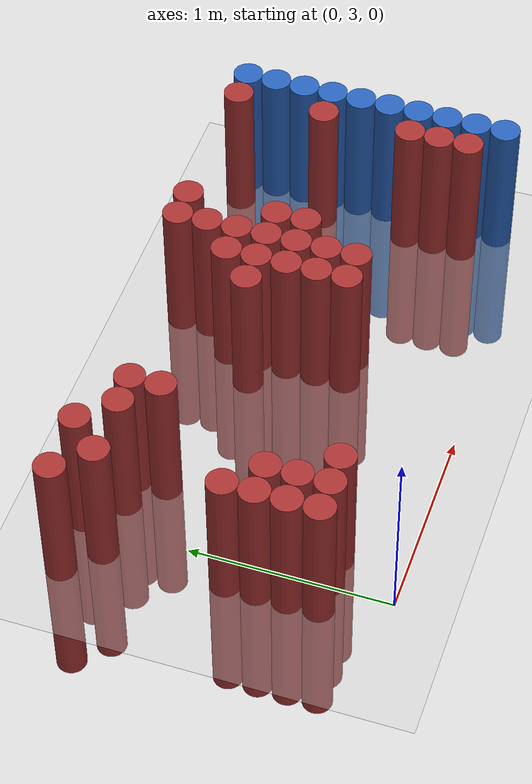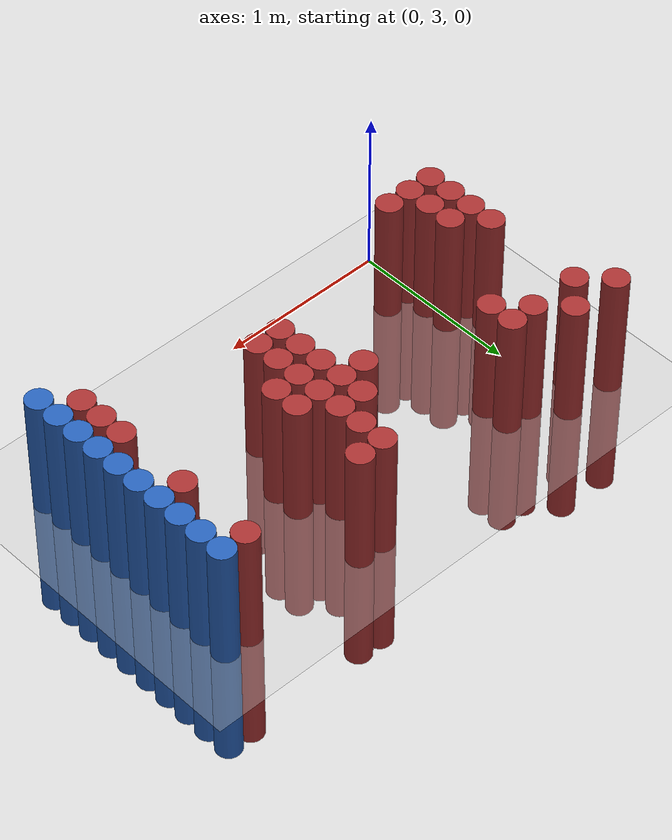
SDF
<sdf version="1.6">
 <world name="default">
  <model name="ground_plane">
   <static>1</static>
   <link name="link">
    <collision name="collision">
     <geometry><plane><normal>0 0 1</normal><size>100 100</size></plane></geometry>
     <surface><friction><ode><mu>100</mu><mu2>50</mu2></ode></friction></surface>
    </collision>
    <visual name="visual">
     <cast_shadows>0</cast_shadows>
     <geometry><plane><normal>0 0 1</normal><size>100 100</size></plane></geometry>
     <material>
      <script><uri>file://media/materials/scripts/gazebo.material</uri><name>Gazebo/Grey</name></script>
     </material>
    </visual>
   </link>
  </model>
  <model name="unit_cylinder_159">
   <static>1</static>
   <pose>-0.275000 4.525000 0.000000 0.000000 0.000000 0.000000</pose>
   <link name="link">
    <inertial>
     <mass>1</mass>
     <inertia><ixx>0.145833</ixx><ixy>0</ixy><ixz>0</ixz><iyy>0.145833</iyy><iyz>0</iyz><izz>0.125</izz></inertia>
    </inertial>
    <collision name="collision">
     <geometry><cylinder><radius>0.075000</radius><length>1.5</length></cylinder></geometry>
    </collision>
    <visual name="visual">
     <geometry><cylinder><radius>0.075000</radius><length>1.5</length></cylinder></geometry>
     <material>
      <ambient>0.648000 0.192000 0.192000 1</ambient>
      <diffuse>0.648000 0.192000 0.192000 1</diffuse>
     </material>
     <material>
      <script><name>Gazebo/Grey</name><uri>file://media/materials/scripts/gazebo.material</uri></script>
     </material>
    </visual>
   </link>
  </model>
  <model name="unit_cylinder_161">
   <static>1</static>
   <pose>-0.125000 3.325000 0.000000 0.000000 0.000000 0.000000</pose>
   <link name="link">
    <inertial>
     <mass>1</mass>
     <inertia><ixx>0.145833</ixx><ixy>0</ixy><ixz>0</ixz><iyy>0.145833</iyy><iyz>0</iyz><izz>0.125</izz></inertia>
    </inertial>
    <collision name="collision">
     <geometry><cylinder><radius>0.075000</radius><length>1.5</length></cylinder></geometry>
    </collision>
    <visual name="visual">
     <geometry><cylinder><radius>0.075000</radius><length>1.5</length></cylinder></geometry>
     <material>
      <ambient>0.648000 0.192000 0.192000 1</ambient>
      <diffuse>0.648000 0.192000 0.192000 1</diffuse>
     </material>
     <material>
      <script><name>Gazebo/Grey</name><uri>file://media/materials/scripts/gazebo.material</uri></script>
     </material>
    </visual>
   </link>
  </model>
  <model name="unit_cylinder_162">
   <static>1</static>
   <pose>-0.125000 3.475000 0.000000 0.000000 0.000000 0.000000</pose>
   <link name="link">
    <inertial>
     <mass>1</mass>
     <inertia><ixx>0.145833</ixx><ixy>0</ixy><ixz>0</ixz><iyy>0.145833</iyy><iyz>0</iyz><izz>0.125</izz></inertia>
    </inertial>
    <collision name="collision">
     <geometry><cylinder><radius>0.075000</radius><length>1.5</length></cylinder></geometry>
    </collision>
    <visual name="visual">
     <geometry><cylinder><radius>0.075000</radius><length>1.5</length></cylinder></geometry>
     <material>
      <ambient>0.648000 0.192000 0.192000 1</ambient>
      <diffuse>0.648000 0.192000 0.192000 1</diffuse>
     </material>
     <material>
      <script><name>Gazebo/Grey</name><uri>file://media/materials/scripts/gazebo.material</uri></script>
     </material>
    </visual>
   </link>
  </model>
  <model name="unit_cylinder_163">
   <static>1</static>
   <pose>-0.125000 3.625000 0.000000 0.000000 0.000000 0.000000</pose>
   <link name="link">
    <inertial>
     <mass>1</mass>
     <inertia><ixx>0.145833</ixx><ixy>0</ixy><ixz>0</ixz><iyy>0.145833</iyy><iyz>0</iyz><izz>0.125</izz></inertia>
    </inertial>
    <collision name="collision">
     <geometry><cylinder><radius>0.075000</radius><length>1.5</length></cylinder></geometry>
    </collision>
    <visual name="visual">
     <geometry><cylinder><radius>0.075000</radius><length>1.5</length></cylinder></geometry>
     <material>
      <ambient>0.648000 0.192000 0.192000 1</ambient>
      <diffuse>0.648000 0.192000 0.192000 1</diffuse>
     </material>
     <material>
      <script><name>Gazebo/Grey</name><uri>file://media/materials/scripts/gazebo.material</uri></script>
     </material>
    </visual>
   </link>
  </model>
  <model name="unit_cylinder_164">
   <static>1</static>
   <pose>-0.125000 3.775000 0.000000 0.000000 0.000000 0.000000</pose>
   <link name="link">
    <inertial>
     <mass>1</mass>
     <inertia><ixx>0.145833</ixx><ixy>0</ixy><ixz>0</ixz><iyy>0.145833</iyy><iyz>0</iyz><izz>0.125</izz></inertia>
    </inertial>
    <collision name="collision">
     <geometry><cylinder><radius>0.075000</radius><length>1.5</length></cylinder></geometry>
    </collision>
    <visual name="visual">
     <geometry><cylinder><radius>0.075000</radius><length>1.5</length></cylinder></geometry>
     <material>
      <ambient>0.648000 0.192000 0.192000 1</ambient>
      <diffuse>0.648000 0.192000 0.192000 1</diffuse>
     </material>
     <material>
      <script><name>Gazebo/Grey</name><uri>file://media/materials/scripts/gazebo.material</uri></script>
     </material>
    </visual>
   </link>
  </model>
  <model name="unit_cylinder_165">
   <static>1</static>
   <pose>-0.125000 4.375000 0.000000 0.000000 0.000000 0.000000</pose>
   <link name="link">
    <inertial>
     <mass>1</mass>
     <inertia><ixx>0.145833</ixx><ixy>0</ixy><ixz>0</ixz><iyy>0.145833</iyy><iyz>0</iyz><izz>0.125</izz></inertia>
    </inertial>
    <collision name="collision">
     <geometry><cylinder><radius>0.075000</radius><length>1.5</length></cylinder></geometry>
    </collision>
    <visual name="visual">
     <geometry><cylinder><radius>0.075000</radius><length>1.5</length></cylinder></geometry>
     <material>
      <ambient>0.648000 0.192000 0.192000 1</ambient>
      <diffuse>0.648000 0.192000 0.192000 1</diffuse>
     </material>
     <material>
      <script><name>Gazebo/Grey</name><uri>file://media/materials/scripts/gazebo.material</uri></script>
     </material>
    </visual>
   </link>
  </model>
  <model name="unit_cylinder_167">
   <static>1</static>
   <pose>0.025000 3.325000 0.000000 0.000000 0.000000 0.000000</pose>
   <link name="link">
    <inertial>
     <mass>1</mass>
     <inertia><ixx>0.145833</ixx><ixy>0</ixy><ixz>0</ixz><iyy>0.145833</iyy><iyz>0</iyz><izz>0.125</izz></inertia>
    </inertial>
    <collision name="collision">
     <geometry><cylinder><radius>0.075000</radius><length>1.5</length></cylinder></geometry>
    </collision>
    <visual name="visual">
     <geometry><cylinder><radius>0.075000</radius><length>1.5</length></cylinder></geometry>
     <material>
      <ambient>0.648000 0.192000 0.192000 1</ambient>
      <diffuse>0.648000 0.192000 0.192000 1</diffuse>
     </material>
     <material>
      <script><name>Gazebo/Grey</name><uri>file://media/materials/scripts/gazebo.material</uri></script>
     </material>
    </visual>
   </link>
  </model>
  <model name="unit_cylinder_168">
   <static>1</static>
   <pose>0.025000 3.475000 0.000000 0.000000 0.000000 0.000000</pose>
   <link name="link">
    <inertial>
     <mass>1</mass>
     <inertia><ixx>0.145833</ixx><ixy>0</ixy><ixz>0</ixz><iyy>0.145833</iyy><iyz>0</iyz><izz>0.125</izz></inertia>
    </inertial>
    <collision name="collision">
     <geometry><cylinder><radius>0.075000</radius><length>1.5</length></cylinder></geometry>
    </collision>
    <visual name="visual">
     <geometry><cylinder><radius>0.075000</radius><length>1.5</length></cylinder></geometry>
     <material>
      <ambient>0.648000 0.192000 0.192000 1</ambient>
      <diffuse>0.648000 0.192000 0.192000 1</diffuse>
     </material>
     <material>
      <script><name>Gazebo/Grey</name><uri>file://media/materials/scripts/gazebo.material</uri></script>
     </material>
    </visual>
   </link>
  </model>
  <model name="unit_cylinder_169">
   <static>1</static>
   <pose>0.025000 3.625000 0.000000 0.000000 0.000000 0.000000</pose>
   <link name="link">
    <inertial>
     <mass>1</mass>
     <inertia><ixx>0.145833</ixx><ixy>0</ixy><ixz>0</ixz><iyy>0.145833</iyy><iyz>0</iyz><izz>0.125</izz></inertia>
    </inertial>
    <collision name="collision">
     <geometry><cylinder><radius>0.075000</radius><length>1.5</length></cylinder></geometry>
    </collision>
    <visual name="visual">
     <geometry><cylinder><radius>0.075000</radius><length>1.5</length></cylinder></geometry>
     <material>
      <ambient>0.648000 0.192000 0.192000 1</ambient>
      <diffuse>0.648000 0.192000 0.192000 1</diffuse>
     </material>
     <material>
      <script><name>Gazebo/Grey</name><uri>file://media/materials/scripts/gazebo.material</uri></script>
     </material>
    </visual>
   </link>
  </model>
  <model name="unit_cylinder_170">
   <static>1</static>
   <pose>0.025000 4.525000 0.000000 0.000000 0.000000 0.000000</pose>
   <link name="link">
    <inertial>
     <mass>1</mass>
     <inertia><ixx>0.145833</ixx><ixy>0</ixy><ixz>0</ixz><iyy>0.145833</iyy><iyz>0</iyz><izz>0.125</izz></inertia>
    </inertial>
    <collision name="collision">
     <geometry><cylinder><radius>0.075000</radius><length>1.5</length></cylinder></geometry>
    </collision>
    <visual name="visual">
     <geometry><cylinder><radius>0.075000</radius><length>1.5</length></cylinder></geometry>
     <material>
      <ambient>0.648000 0.192000 0.192000 1</ambient>
      <diffuse>0.648000 0.192000 0.192000 1</diffuse>
     </material>
     <material>
      <script><name>Gazebo/Grey</name><uri>file://media/materials/scripts/gazebo.material</uri></script>
     </material>
    </visual>
   </link>
  </model>
  <model name="unit_cylinder_172">
   <static>1</static>
   <pose>0.175000 3.325000 0.000000 0.000000 0.000000 0.000000</pose>
   <link name="link">
    <inertial>
     <mass>1</mass>
     <inertia><ixx>0.145833</ixx><ixy>0</ixy><ixz>0</ixz><iyy>0.145833</iyy><iyz>0</iyz><izz>0.125</izz></inertia>
    </inertial>
    <collision name="collision">
     <geometry><cylinder><radius>0.075000</radius><length>1.5</length></cylinder></geometry>
    </collision>
    <visual name="visual">
     <geometry><cylinder><radius>0.075000</radius><length>1.5</length></cylinder></geometry>
     <material>
      <ambient>0.648000 0.192000 0.192000 1</ambient>
      <diffuse>0.648000 0.192000 0.192000 1</diffuse>
     </material>
     <material>
      <script><name>Gazebo/Grey</name><uri>file://media/materials/scripts/gazebo.material</uri></script>
     </material>
    </visual>
   </link>
  </model>
  <model name="unit_cylinder_173">
   <static>1</static>
   <pose>0.175000 4.375000 0.000000 0.000000 0.000000 0.000000</pose>
   <link name="link">
    <inertial>
     <mass>1</mass>
     <inertia><ixx>0.145833</ixx><ixy>0</ixy><ixz>0</ixz><iyy>0.145833</iyy><iyz>0</iyz><izz>0.125</izz></inertia>
    </inertial>
    <collision name="collision">
     <geometry><cylinder><radius>0.075000</radius><length>1.5</length></cylinder></geometry>
    </collision>
    <visual name="visual">
     <geometry><cylinder><radius>0.075000</radius><length>1.5</length></cylinder></geometry>
     <material>
      <ambient>0.648000 0.192000 0.192000 1</ambient>
      <diffuse>0.648000 0.192000 0.192000 1</diffuse>
     </material>
     <material>
      <script><name>Gazebo/Grey</name><uri>file://media/materials/scripts/gazebo.material</uri></script>
     </material>
    </visual>
   </link>
  </model>
  <model name="unit_cylinder_177">
   <static>1</static>
   <pose>0.325000 4.225000 0.000000 0.000000 0.000000 0.000000</pose>
   <link name="link">
    <inertial>
     <mass>1</mass>
     <inertia><ixx>0.145833</ixx><ixy>0</ixy><ixz>0</ixz><iyy>0.145833</iyy><iyz>0</iyz><izz>0.125</izz></inertia>
    </inertial>
    <collision name="collision">
     <geometry><cylinder><radius>0.075000</radius><length>1.5</length></cylinder></geometry>
    </collision>
    <visual name="visual">
     <geometry><cylinder><radius>0.075000</radius><length>1.5</length></cylinder></geometry>
     <material>
      <ambient>0.648000 0.192000 0.192000 1</ambient>
      <diffuse>0.648000 0.192000 0.192000 1</diffuse>
     </material>
     <material>
      <script><name>Gazebo/Grey</name><uri>file://media/materials/scripts/gazebo.material</uri></script>
     </material>
    </visual>
   </link>
  </model>
  <model name="unit_cylinder_178">
   <static>1</static>
   <pose>0.325000 4.375000 0.000000 0.000000 0.000000 0.000000</pose>
   <link name="link">
    <inertial>
     <mass>1</mass>
     <inertia><ixx>0.145833</ixx><ixy>0</ixy><ixz>0</ixz><iyy>0.145833</iyy><iyz>0</iyz><izz>0.125</izz></inertia>
    </inertial>
    <collision name="collision">
     <geometry><cylinder><radius>0.075000</radius><length>1.5</length></cylinder></geometry>
    </collision>
    <visual name="visual">
     <geometry><cylinder><radius>0.075000</radius><length>1.5</length></cylinder></geometry>
     <material>
      <ambient>0.648000 0.192000 0.192000 1</ambient>
      <diffuse>0.648000 0.192000 0.192000 1</diffuse>
     </material>
     <material>
      <script><name>Gazebo/Grey</name><uri>file://media/materials/scripts/gazebo.material</uri></script>
     </material>
    </visual>
   </link>
  </model>
  <model name="unit_cylinder_192">
   <static>1</static>
   <pose>1.075000 4.075000 0.000000 0.000000 0.000000 0.000000</pose>
   <link name="link">
    <inertial>
     <mass>1</mass>
     <inertia><ixx>0.145833</ixx><ixy>0</ixy><ixz>0</ixz><iyy>0.145833</iyy><iyz>0</iyz><izz>0.125</izz></inertia>
    </inertial>
    <collision name="collision">
     <geometry><cylinder><radius>0.075000</radius><length>1.5</length></cylinder></geometry>
    </collision>
    <visual name="visual">
     <geometry><cylinder><radius>0.075000</radius><length>1.5</length></cylinder></geometry>
     <material>
      <ambient>0.648000 0.192000 0.192000 1</ambient>
      <diffuse>0.648000 0.192000 0.192000 1</diffuse>
     </material>
     <material>
      <script><name>Gazebo/Grey</name><uri>file://media/materials/scripts/gazebo.material</uri></script>
     </material>
    </visual>
   </link>
  </model>
  <model name="unit_cylinder_193">
   <static>1</static>
   <pose>1.225000 3.625000 0.000000 0.000000 0.000000 0.000000</pose>
   <link name="link">
    <inertial>
     <mass>1</mass>
     <inertia><ixx>0.145833</ixx><ixy>0</ixy><ixz>0</ixz><iyy>0.145833</iyy><iyz>0</iyz><izz>0.125</izz></inertia>
    </inertial>
    <collision name="collision">
     <geometry><cylinder><radius>0.075000</radius><length>1.5</length></cylinder></geometry>
    </collision>
    <visual name="visual">
     <geometry><cylinder><radius>0.075000</radius><length>1.5</length></cylinder></geometry>
     <material>
      <ambient>0.648000 0.192000 0.192000 1</ambient>
      <diffuse>0.648000 0.192000 0.192000 1</diffuse>
     </material>
     <material>
      <script><name>Gazebo/Grey</name><uri>file://media/materials/scripts/gazebo.material</uri></script>
     </material>
    </visual>
   </link>
  </model>
  <model name="unit_cylinder_194">
   <static>1</static>
   <pose>1.225000 3.775000 0.000000 0.000000 0.000000 0.000000</pose>
   <link name="link">
    <inertial>
     <mass>1</mass>
     <inertia><ixx>0.145833</ixx><ixy>0</ixy><ixz>0</ixz><iyy>0.145833</iyy><iyz>0</iyz><izz>0.125</izz></inertia>
    </inertial>
    <collision name="collision">
     <geometry><cylinder><radius>0.075000</radius><length>1.5</length></cylinder></geometry>
    </collision>
    <visual name="visual">
     <geometry><cylinder><radius>0.075000</radius><length>1.5</length></cylinder></geometry>
     <material>
      <ambient>0.648000 0.192000 0.192000 1</ambient>
      <diffuse>0.648000 0.192000 0.192000 1</diffuse>
     </material>
     <material>
      <script><name>Gazebo/Grey</name><uri>file://media/materials/scripts/gazebo.material</uri></script>
     </material>
    </visual>
   </link>
  </model>
  <model name="unit_cylinder_195">
   <static>1</static>
   <pose>1.225000 3.925000 0.000000 0.000000 0.000000 0.000000</pose>
   <link name="link">
    <inertial>
     <mass>1</mass>
     <inertia><ixx>0.145833</ixx><ixy>0</ixy><ixz>0</ixz><iyy>0.145833</iyy><iyz>0</iyz><izz>0.125</izz></inertia>
    </inertial>
    <collision name="collision">
     <geometry><cylinder><radius>0.075000</radius><length>1.5</length></cylinder></geometry>
    </collision>
    <visual name="visual">
     <geometry><cylinder><radius>0.075000</radius><length>1.5</length></cylinder></geometry>
     <material>
      <ambient>0.648000 0.192000 0.192000 1</ambient>
      <diffuse>0.648000 0.192000 0.192000 1</diffuse>
     </material>
     <material>
      <script><name>Gazebo/Grey</name><uri>file://media/materials/scripts/gazebo.material</uri></script>
     </material>
    </visual>
   </link>
  </model>
  <model name="unit_cylinder_196">
   <static>1</static>
   <pose>1.225000 4.075000 0.000000 0.000000 0.000000 0.000000</pose>
   <link name="link">
    <inertial>
     <mass>1</mass>
     <inertia><ixx>0.145833</ixx><ixy>0</ixy><ixz>0</ixz><iyy>0.145833</iyy><iyz>0</iyz><izz>0.125</izz></inertia>
    </inertial>
    <collision name="collision">
     <geometry><cylinder><radius>0.075000</radius><length>1.5</length></cylinder></geometry>
    </collision>
    <visual name="visual">
     <geometry><cylinder><radius>0.075000</radius><length>1.5</length></cylinder></geometry>
     <material>
      <ambient>0.648000 0.192000 0.192000 1</ambient>
      <diffuse>0.648000 0.192000 0.192000 1</diffuse>
     </material>
     <material>
      <script><name>Gazebo/Grey</name><uri>file://media/materials/scripts/gazebo.material</uri></script>
     </material>
    </visual>
   </link>
  </model>
  <model name="unit_cylinder_197">
   <static>1</static>
   <pose>1.225000 4.225000 0.000000 0.000000 0.000000 0.000000</pose>
   <link name="link">
    <inertial>
     <mass>1</mass>
     <inertia><ixx>0.145833</ixx><ixy>0</ixy><ixz>0</ixz><iyy>0.145833</iyy><iyz>0</iyz><izz>0.125</izz></inertia>
    </inertial>
    <collision name="collision">
     <geometry><cylinder><radius>0.075000</radius><length>1.5</length></cylinder></geometry>
    </collision>
    <visual name="visual">
     <geometry><cylinder><radius>0.075000</radius><length>1.5</length></cylinder></geometry>
     <material>
      <ambient>0.648000 0.192000 0.192000 1</ambient>
      <diffuse>0.648000 0.192000 0.192000 1</diffuse>
     </material>
     <material>
      <script><name>Gazebo/Grey</name><uri>file://media/materials/scripts/gazebo.material</uri></script>
     </material>
    </visual>
   </link>
  </model>
  <model name="unit_cylinder_198">
   <static>1</static>
   <pose>1.375000 3.625000 0.000000 0.000000 0.000000 0.000000</pose>
   <link name="link">
    <inertial>
     <mass>1</mass>
     <inertia><ixx>0.145833</ixx><ixy>0</ixy><ixz>0</ixz><iyy>0.145833</iyy><iyz>0</iyz><izz>0.125</izz></inertia>
    </inertial>
    <collision name="collision">
     <geometry><cylinder><radius>0.075000</radius><length>1.5</length></cylinder></geometry>
    </collision>
    <visual name="visual">
     <geometry><cylinder><radius>0.075000</radius><length>1.5</length></cylinder></geometry>
     <material>
      <ambient>0.648000 0.192000 0.192000 1</ambient>
      <diffuse>0.648000 0.192000 0.192000 1</diffuse>
     </material>
     <material>
      <script><name>Gazebo/Grey</name><uri>file://media/materials/scripts/gazebo.material</uri></script>
     </material>
    </visual>
   </link>
  </model>
  <model name="unit_cylinder_199">
   <static>1</static>
   <pose>1.375000 3.775000 0.000000 0.000000 0.000000 0.000000</pose>
   <link name="link">
    <inertial>
     <mass>1</mass>
     <inertia><ixx>0.145833</ixx><ixy>0</ixy><ixz>0</ixz><iyy>0.145833</iyy><iyz>0</iyz><izz>0.125</izz></inertia>
    </inertial>
    <collision name="collision">
     <geometry><cylinder><radius>0.075000</radius><length>1.5</length></cylinder></geometry>
    </collision>
    <visual name="visual">
     <geometry><cylinder><radius>0.075000</radius><length>1.5</length></cylinder></geometry>
     <material>
      <ambient>0.648000 0.192000 0.192000 1</ambient>
      <diffuse>0.648000 0.192000 0.192000 1</diffuse>
     </material>
     <material>
      <script><name>Gazebo/Grey</name><uri>file://media/materials/scripts/gazebo.material</uri></script>
     </material>
    </visual>
   </link>
  </model>
  <model name="unit_cylinder_200">
   <static>1</static>
   <pose>1.375000 3.925000 0.000000 0.000000 0.000000 0.000000</pose>
   <link name="link">
    <inertial>
     <mass>1</mass>
     <inertia><ixx>0.145833</ixx><ixy>0</ixy><ixz>0</ixz><iyy>0.145833</iyy><iyz>0</iyz><izz>0.125</izz></inertia>
    </inertial>
    <collision name="collision">
     <geometry><cylinder><radius>0.075000</radius><length>1.5</length></cylinder></geometry>
    </collision>
    <visual name="visual">
     <geometry><cylinder><radius>0.075000</radius><length>1.5</length></cylinder></geometry>
     <material>
      <ambient>0.648000 0.192000 0.192000 1</ambient>
      <diffuse>0.648000 0.192000 0.192000 1</diffuse>
     </material>
     <material>
      <script><name>Gazebo/Grey</name><uri>file://media/materials/scripts/gazebo.material</uri></script>
     </material>
    </visual>
   </link>
  </model>
  <model name="unit_cylinder_201">
   <static>1</static>
   <pose>1.375000 4.075000 0.000000 0.000000 0.000000 0.000000</pose>
   <link name="link">
    <inertial>
     <mass>1</mass>
     <inertia><ixx>0.145833</ixx><ixy>0</ixy><ixz>0</ixz><iyy>0.145833</iyy><iyz>0</iyz><izz>0.125</izz></inertia>
    </inertial>
    <collision name="collision">
     <geometry><cylinder><radius>0.075000</radius><length>1.5</length></cylinder></geometry>
    </collision>
    <visual name="visual">
     <geometry><cylinder><radius>0.075000</radius><length>1.5</length></cylinder></geometry>
     <material>
      <ambient>0.648000 0.192000 0.192000 1</ambient>
      <diffuse>0.648000 0.192000 0.192000 1</diffuse>
     </material>
     <material>
      <script><name>Gazebo/Grey</name><uri>file://media/materials/scripts/gazebo.material</uri></script>
     </material>
    </visual>
   </link>
  </model>
  <model name="unit_cylinder_202">
   <static>1</static>
   <pose>1.375000 4.225000 0.000000 0.000000 0.000000 0.000000</pose>
   <link name="link">
    <inertial>
     <mass>1</mass>
     <inertia><ixx>0.145833</ixx><ixy>0</ixy><ixz>0</ixz><iyy>0.145833</iyy><iyz>0</iyz><izz>0.125</izz></inertia>
    </inertial>
    <collision name="collision">
     <geometry><cylinder><radius>0.075000</radius><length>1.5</length></cylinder></geometry>
    </collision>
    <visual name="visual">
     <geometry><cylinder><radius>0.075000</radius><length>1.5</length></cylinder></geometry>
     <material>
      <ambient>0.648000 0.192000 0.192000 1</ambient>
      <diffuse>0.648000 0.192000 0.192000 1</diffuse>
     </material>
     <material>
      <script><name>Gazebo/Grey</name><uri>file://media/materials/scripts/gazebo.material</uri></script>
     </material>
    </visual>
   </link>
  </model>
  <model name="unit_cylinder_203">
   <static>1</static>
   <pose>1.375000 4.375000 0.000000 0.000000 0.000000 0.000000</pose>
   <link name="link">
    <inertial>
     <mass>1</mass>
     <inertia><ixx>0.145833</ixx><ixy>0</ixy><ixz>0</ixz><iyy>0.145833</iyy><iyz>0</iyz><izz>0.125</izz></inertia>
    </inertial>
    <collision name="collision">
     <geometry><cylinder><radius>0.075000</radius><length>1.5</length></cylinder></geometry>
    </collision>
    <visual name="visual">
     <geometry><cylinder><radius>0.075000</radius><length>1.5</length></cylinder></geometry>
     <material>
      <ambient>0.648000 0.192000 0.192000 1</ambient>
      <diffuse>0.648000 0.192000 0.192000 1</diffuse>
     </material>
     <material>
      <script><name>Gazebo/Grey</name><uri>file://media/materials/scripts/gazebo.material</uri></script>
     </material>
    </visual>
   </link>
  </model>
  <model name="unit_cylinder_204">
   <static>1</static>
   <pose>1.375000 4.525000 0.000000 0.000000 0.000000 0.000000</pose>
   <link name="link">
    <inertial>
     <mass>1</mass>
     <inertia><ixx>0.145833</ixx><ixy>0</ixy><ixz>0</ixz><iyy>0.145833</iyy><iyz>0</iyz><izz>0.125</izz></inertia>
    </inertial>
    <collision name="collision">
     <geometry><cylinder><radius>0.075000</radius><length>1.5</length></cylinder></geometry>
    </collision>
    <visual name="visual">
     <geometry><cylinder><radius>0.075000</radius><length>1.5</length></cylinder></geometry>
     <material>
      <ambient>0.648000 0.192000 0.192000 1</ambient>
      <diffuse>0.648000 0.192000 0.192000 1</diffuse>
     </material>
     <material>
      <script><name>Gazebo/Grey</name><uri>file://media/materials/scripts/gazebo.material</uri></script>
     </material>
    </visual>
   </link>
  </model>
  <model name="unit_cylinder_207">
   <static>1</static>
   <pose>1.525000 3.925000 0.000000 0.000000 0.000000 0.000000</pose>
   <link name="link">
    <inertial>
     <mass>1</mass>
     <inertia><ixx>0.145833</ixx><ixy>0</ixy><ixz>0</ixz><iyy>0.145833</iyy><iyz>0</iyz><izz>0.125</izz></inertia>
    </inertial>
    <collision name="collision">
     <geometry><cylinder><radius>0.075000</radius><length>1.5</length></cylinder></geometry>
    </collision>
    <visual name="visual">
     <geometry><cylinder><radius>0.075000</radius><length>1.5</length></cylinder></geometry>
     <material>
      <ambient>0.648000 0.192000 0.192000 1</ambient>
      <diffuse>0.648000 0.192000 0.192000 1</diffuse>
     </material>
     <material>
      <script><name>Gazebo/Grey</name><uri>file://media/materials/scripts/gazebo.material</uri></script>
     </material>
    </visual>
   </link>
  </model>
  <model name="unit_cylinder_208">
   <static>1</static>
   <pose>1.525000 4.075000 0.000000 0.000000 0.000000 0.000000</pose>
   <link name="link">
    <inertial>
     <mass>1</mass>
     <inertia><ixx>0.145833</ixx><ixy>0</ixy><ixz>0</ixz><iyy>0.145833</iyy><iyz>0</iyz><izz>0.125</izz></inertia>
    </inertial>
    <collision name="collision">
     <geometry><cylinder><radius>0.075000</radius><length>1.5</length></cylinder></geometry>
    </collision>
    <visual name="visual">
     <geometry><cylinder><radius>0.075000</radius><length>1.5</length></cylinder></geometry>
     <material>
      <ambient>0.648000 0.192000 0.192000 1</ambient>
      <diffuse>0.648000 0.192000 0.192000 1</diffuse>
     </material>
     <material>
      <script><name>Gazebo/Grey</name><uri>file://media/materials/scripts/gazebo.material</uri></script>
     </material>
    </visual>
   </link>
  </model>
  <model name="unit_cylinder_209">
   <static>1</static>
   <pose>1.525000 4.525000 0.000000 0.000000 0.000000 0.000000</pose>
   <link name="link">
    <inertial>
     <mass>1</mass>
     <inertia><ixx>0.145833</ixx><ixy>0</ixy><ixz>0</ixz><iyy>0.145833</iyy><iyz>0</iyz><izz>0.125</izz></inertia>
    </inertial>
    <collision name="collision">
     <geometry><cylinder><radius>0.075000</radius><length>1.5</length></cylinder></geometry>
    </collision>
    <visual name="visual">
     <geometry><cylinder><radius>0.075000</radius><length>1.5</length></cylinder></geometry>
     <material>
      <ambient>0.648000 0.192000 0.192000 1</ambient>
      <diffuse>0.648000 0.192000 0.192000 1</diffuse>
     </material>
     <material>
      <script><name>Gazebo/Grey</name><uri>file://media/materials/scripts/gazebo.material</uri></script>
     </material>
    </visual>
   </link>
  </model>
  <model name="unit_cylinder_239">
   <static>1</static>
   <pose>2.275000 3.325000 0.000000 0.000000 0.000000 0.000000</pose>
   <link name="link">
    <inertial>
     <mass>1</mass>
     <inertia><ixx>0.145833</ixx><ixy>0</ixy><ixz>0</ixz><iyy>0.145833</iyy><iyz>0</iyz><izz>0.125</izz></inertia>
    </inertial>
    <collision name="collision">
     <geometry><cylinder><radius>0.075000</radius><length>1.5</length></cylinder></geometry>
    </collision>
    <visual name="visual">
     <geometry><cylinder><radius>0.075000</radius><length>1.5</length></cylinder></geometry>
     <material>
      <ambient>0.648000 0.192000 0.192000 1</ambient>
      <diffuse>0.648000 0.192000 0.192000 1</diffuse>
     </material>
     <material>
      <script><name>Gazebo/Grey</name><uri>file://media/materials/scripts/gazebo.material</uri></script>
     </material>
    </visual>
   </link>
  </model>
  <model name="unit_cylinder_240">
   <static>1</static>
   <pose>2.275000 3.475000 0.000000 0.000000 0.000000 0.000000</pose>
   <link name="link">
    <inertial>
     <mass>1</mass>
     <inertia><ixx>0.145833</ixx><ixy>0</ixy><ixz>0</ixz><iyy>0.145833</iyy><iyz>0</iyz><izz>0.125</izz></inertia>
    </inertial>
    <collision name="collision">
     <geometry><cylinder><radius>0.075000</radius><length>1.5</length></cylinder></geometry>
    </collision>
    <visual name="visual">
     <geometry><cylinder><radius>0.075000</radius><length>1.5</length></cylinder></geometry>
     <material>
      <ambient>0.648000 0.192000 0.192000 1</ambient>
      <diffuse>0.648000 0.192000 0.192000 1</diffuse>
     </material>
     <material>
      <script><name>Gazebo/Grey</name><uri>file://media/materials/scripts/gazebo.material</uri></script>
     </material>
    </visual>
   </link>
  </model>
  <model name="unit_cylinder_241">
   <static>1</static>
   <pose>2.275000 3.625000 0.000000 0.000000 0.000000 0.000000</pose>
   <link name="link">
    <inertial>
     <mass>1</mass>
     <inertia><ixx>0.145833</ixx><ixy>0</ixy><ixz>0</ixz><iyy>0.145833</iyy><iyz>0</iyz><izz>0.125</izz></inertia>
    </inertial>
    <collision name="collision">
     <geometry><cylinder><radius>0.075000</radius><length>1.5</length></cylinder></geometry>
    </collision>
    <visual name="visual">
     <geometry><cylinder><radius>0.075000</radius><length>1.5</length></cylinder></geometry>
     <material>
      <ambient>0.648000 0.192000 0.192000 1</ambient>
      <diffuse>0.648000 0.192000 0.192000 1</diffuse>
     </material>
     <material>
      <script><name>Gazebo/Grey</name><uri>file://media/materials/scripts/gazebo.material</uri></script>
     </material>
    </visual>
   </link>
  </model>
  <model name="unit_cylinder_242">
   <static>1</static>
   <pose>2.275000 4.075000 0.000000 0.000000 0.000000 0.000000</pose>
   <link name="link">
    <inertial>
     <mass>1</mass>
     <inertia><ixx>0.145833</ixx><ixy>0</ixy><ixz>0</ixz><iyy>0.145833</iyy><iyz>0</iyz><izz>0.125</izz></inertia>
    </inertial>
    <collision name="collision">
     <geometry><cylinder><radius>0.075000</radius><length>1.5</length></cylinder></geometry>
    </collision>
    <visual name="visual">
     <geometry><cylinder><radius>0.075000</radius><length>1.5</length></cylinder></geometry>
     <material>
      <ambient>0.648000 0.192000 0.192000 1</ambient>
      <diffuse>0.648000 0.192000 0.192000 1</diffuse>
     </material>
     <material>
      <script><name>Gazebo/Grey</name><uri>file://media/materials/scripts/gazebo.material</uri></script>
     </material>
    </visual>
   </link>
  </model>
  <model name="unit_cylinder_243">
   <static>1</static>
   <pose>2.275000 4.525000 0.000000 0.000000 0.000000 0.000000</pose>
   <link name="link">
    <inertial>
     <mass>1</mass>
     <inertia><ixx>0.145833</ixx><ixy>0</ixy><ixz>0</ixz><iyy>0.145833</iyy><iyz>0</iyz><izz>0.125</izz></inertia>
    </inertial>
    <collision name="collision">
     <geometry><cylinder><radius>0.075000</radius><length>1.5</length></cylinder></geometry>
    </collision>
    <visual name="visual">
     <geometry><cylinder><radius>0.075000</radius><length>1.5</length></cylinder></geometry>
     <material>
      <ambient>0.648000 0.192000 0.192000 1</ambient>
      <diffuse>0.648000 0.192000 0.192000 1</diffuse>
     </material>
     <material>
      <script><name>Gazebo/Grey</name><uri>file://media/materials/scripts/gazebo.material</uri></script>
     </material>
    </visual>
   </link>
  </model>
  <model name="unit_cylinder_264">
   <static>1</static>
   <pose>2.425000 3.175000 0.000000 0.000000 0.000000 0.000000</pose>
   <link name="link">
    <inertial>
     <mass>1</mass>
     <inertia><ixx>0.145833</ixx><ixy>0</ixy><ixz>0</ixz><iyy>0.145833</iyy><iyz>0</iyz><izz>0.125</izz></inertia>
    </inertial>
    <collision name="collision">
     <geometry><cylinder><radius>0.075000</radius><length>1.5</length></cylinder></geometry>
    </collision>
    <visual name="visual">
     <geometry><cylinder><radius>0.075000</radius><length>1.5</length></cylinder></geometry>
     <material>
      <ambient>0.152000 0.379000 0.720000 1</ambient>
      <diffuse>0.152000 0.379000 0.720000 1</diffuse>
     </material>
     <material>
      <script><name>Gazebo/Grey</name><uri>file://media/materials/scripts/gazebo.material</uri></script>
     </material>
    </visual>
   </link>
  </model>
  <model name="unit_cylinder_265">
   <static>1</static>
   <pose>2.425000 3.325000 0.000000 0.000000 0.000000 0.000000</pose>
   <link name="link">
    <inertial>
     <mass>1</mass>
     <inertia><ixx>0.145833</ixx><ixy>0</ixy><ixz>0</ixz><iyy>0.145833</iyy><iyz>0</iyz><izz>0.125</izz></inertia>
    </inertial>
    <collision name="collision">
     <geometry><cylinder><radius>0.075000</radius><length>1.5</length></cylinder></geometry>
    </collision>
    <visual name="visual">
     <geometry><cylinder><radius>0.075000</radius><length>1.5</length></cylinder></geometry>
     <material>
      <ambient>0.152000 0.379000 0.720000 1</ambient>
      <diffuse>0.152000 0.379000 0.720000 1</diffuse>
     </material>
     <material>
      <script><name>Gazebo/Grey</name><uri>file://media/materials/scripts/gazebo.material</uri></script>
     </material>
    </visual>
   </link>
  </model>
  <model name="unit_cylinder_266">
   <static>1</static>
   <pose>2.425000 3.475000 0.000000 0.000000 0.000000 0.000000</pose>
   <link name="link">
    <inertial>
     <mass>1</mass>
     <inertia><ixx>0.145833</ixx><ixy>0</ixy><ixz>0</ixz><iyy>0.145833</iyy><iyz>0</iyz><izz>0.125</izz></inertia>
    </inertial>
    <collision name="collision">
     <geometry><cylinder><radius>0.075000</radius><length>1.5</length></cylinder></geometry>
    </collision>
    <visual name="visual">
     <geometry><cylinder><radius>0.075000</radius><length>1.5</length></cylinder></geometry>
     <material>
      <ambient>0.152000 0.379000 0.720000 1</ambient>
      <diffuse>0.152000 0.379000 0.720000 1</diffuse>
     </material>
     <material>
      <script><name>Gazebo/Grey</name><uri>file://media/materials/scripts/gazebo.material</uri></script>
     </material>
    </visual>
   </link>
  </model>
  <model name="unit_cylinder_267">
   <static>1</static>
   <pose>2.425000 3.625000 0.000000 0.000000 0.000000 0.000000</pose>
   <link name="link">
    <inertial>
     <mass>1</mass>
     <inertia><ixx>0.145833</ixx><ixy>0</ixy><ixz>0</ixz><iyy>0.145833</iyy><iyz>0</iyz><izz>0.125</izz></inertia>
    </inertial>
    <collision name="collision">
     <geometry><cylinder><radius>0.075000</radius><length>1.5</length></cylinder></geometry>
    </collision>
    <visual name="visual">
     <geometry><cylinder><radius>0.075000</radius><length>1.5</length></cylinder></geometry>
     <material>
      <ambient>0.152000 0.379000 0.720000 1</ambient>
      <diffuse>0.152000 0.379000 0.720000 1</diffuse>
     </material>
     <material>
      <script><name>Gazebo/Grey</name><uri>file://media/materials/scripts/gazebo.material</uri></script>
     </material>
    </visual>
   </link>
  </model>
  <model name="unit_cylinder_268">
   <static>1</static>
   <pose>2.425000 3.775000 0.000000 0.000000 0.000000 0.000000</pose>
   <link name="link">
    <inertial>
     <mass>1</mass>
     <inertia><ixx>0.145833</ixx><ixy>0</ixy><ixz>0</ixz><iyy>0.145833</iyy><iyz>0</iyz><izz>0.125</izz></inertia>
    </inertial>
    <collision name="collision">
     <geometry><cylinder><radius>0.075000</radius><length>1.5</length></cylinder></geometry>
    </collision>
    <visual name="visual">
     <geometry><cylinder><radius>0.075000</radius><length>1.5</length></cylinder></geometry>
     <material>
      <ambient>0.152000 0.379000 0.720000 1</ambient>
      <diffuse>0.152000 0.379000 0.720000 1</diffuse>
     </material>
     <material>
      <script><name>Gazebo/Grey</name><uri>file://media/materials/scripts/gazebo.material</uri></script>
     </material>
    </visual>
   </link>
  </model>
  <model name="unit_cylinder_269">
   <static>1</static>
   <pose>2.425000 3.925000 0.000000 0.000000 0.000000 0.000000</pose>
   <link name="link">
    <inertial>
     <mass>1</mass>
     <inertia><ixx>0.145833</ixx><ixy>0</ixy><ixz>0</ixz><iyy>0.145833</iyy><iyz>0</iyz><izz>0.125</izz></inertia>
    </inertial>
    <collision name="collision">
     <geometry><cylinder><radius>0.075000</radius><length>1.5</length></cylinder></geometry>
    </collision>
    <visual name="visual">
     <geometry><cylinder><radius>0.075000</radius><length>1.5</length></cylinder></geometry>
     <material>
      <ambient>0.152000 0.379000 0.720000 1</ambient>
      <diffuse>0.152000 0.379000 0.720000 1</diffuse>
     </material>
     <material>
      <script><name>Gazebo/Grey</name><uri>file://media/materials/scripts/gazebo.material</uri></script>
     </material>
    </visual>
   </link>
  </model>
  <model name="unit_cylinder_270">
   <static>1</static>
   <pose>2.425000 4.075000 0.000000 0.000000 0.000000 0.000000</pose>
   <link name="link">
    <inertial>
     <mass>1</mass>
     <inertia><ixx>0.145833</ixx><ixy>0</ixy><ixz>0</ixz><iyy>0.145833</iyy><iyz>0</iyz><izz>0.125</izz></inertia>
    </inertial>
    <collision name="collision">
     <geometry><cylinder><radius>0.075000</radius><length>1.5</length></cylinder></geometry>
    </collision>
    <visual name="visual">
     <geometry><cylinder><radius>0.075000</radius><length>1.5</length></cylinder></geometry>
     <material>
      <ambient>0.152000 0.379000 0.720000 1</ambient>
      <diffuse>0.152000 0.379000 0.720000 1</diffuse>
     </material>
     <material>
      <script><name>Gazebo/Grey</name><uri>file://media/materials/scripts/gazebo.material</uri></script>
     </material>
    </visual>
   </link>
  </model>
  <model name="unit_cylinder_271">
   <static>1</static>
   <pose>2.425000 4.225000 0.000000 0.000000 0.000000 0.000000</pose>
   <link name="link">
    <inertial>
     <mass>1</mass>
     <inertia><ixx>0.145833</ixx><ixy>0</ixy><ixz>0</ixz><iyy>0.145833</iyy><iyz>0</iyz><izz>0.125</izz></inertia>
    </inertial>
    <collision name="collision">
     <geometry><cylinder><radius>0.075000</radius><length>1.5</length></cylinder></geometry>
    </collision>
    <visual name="visual">
     <geometry><cylinder><radius>0.075000</radius><length>1.5</length></cylinder></geometry>
     <material>
      <ambient>0.152000 0.379000 0.720000 1</ambient>
      <diffuse>0.152000 0.379000 0.720000 1</diffuse>
     </material>
     <material>
      <script><name>Gazebo/Grey</name><uri>file://media/materials/scripts/gazebo.material</uri></script>
     </material>
    </visual>
   </link>
  </model>
  <model name="unit_cylinder_272">
   <static>1</static>
   <pose>2.425000 4.375000 0.000000 0.000000 0.000000 0.000000</pose>
   <link name="link">
    <inertial>
     <mass>1</mass>
     <inertia><ixx>0.145833</ixx><ixy>0</ixy><ixz>0</ixz><iyy>0.145833</iyy><iyz>0</iyz><izz>0.125</izz></inertia>
    </inertial>
    <collision name="collision">
     <geometry><cylinder><radius>0.075000</radius><length>1.5</length></cylinder></geometry>
    </collision>
    <visual name="visual">
     <geometry><cylinder><radius>0.075000</radius><length>1.5</length></cylinder></geometry>
     <material>
      <ambient>0.152000 0.379000 0.720000 1</ambient>
      <diffuse>0.152000 0.379000 0.720000 1</diffuse>
     </material>
     <material>
      <script><name>Gazebo/Grey</name><uri>file://media/materials/scripts/gazebo.material</uri></script>
     </material>
    </visual>
   </link>
  </model>
  <model name="unit_cylinder_273">
   <static>1</static>
   <pose>2.425000 4.525000 0.000000 0.000000 0.000000 0.000000</pose>
   <link name="link">
    <inertial>
     <mass>1</mass>
     <inertia><ixx>0.145833</ixx><ixy>0</ixy><ixz>0</ixz><iyy>0.145833</iyy><iyz>0</iyz><izz>0.125</izz></inertia>
    </inertial>
    <collision name="collision">
     <geometry><cylinder><radius>0.075000</radius><length>1.5</length></cylinder></geometry>
    </collision>
    <visual name="visual">
     <geometry><cylinder><radius>0.075000</radius><length>1.5</length></cylinder></geometry>
     <material>
      <ambient>0.152000 0.379000 0.720000 1</ambient>
      <diffuse>0.152000 0.379000 0.720000 1</diffuse>
     </material>
     <material>
      <script><name>Gazebo/Grey</name><uri>file://media/materials/scripts/gazebo.material</uri></script>
     </material>
    </visual>
   </link>
  </model>
 </world>
</sdf>
